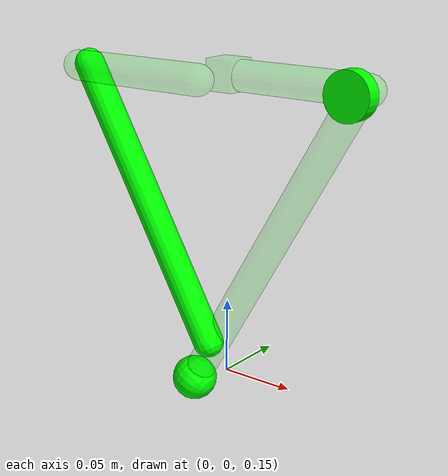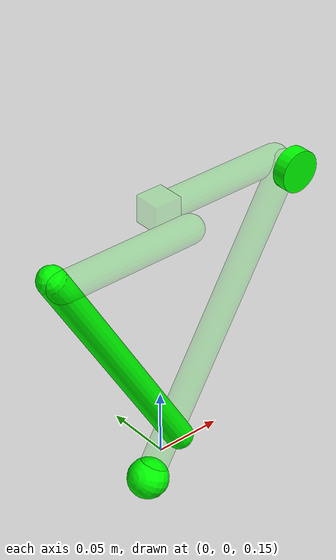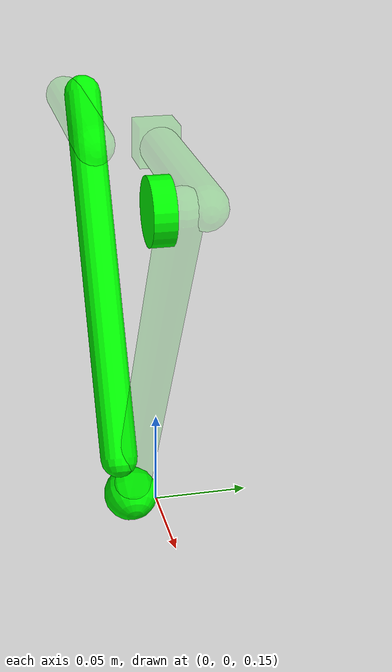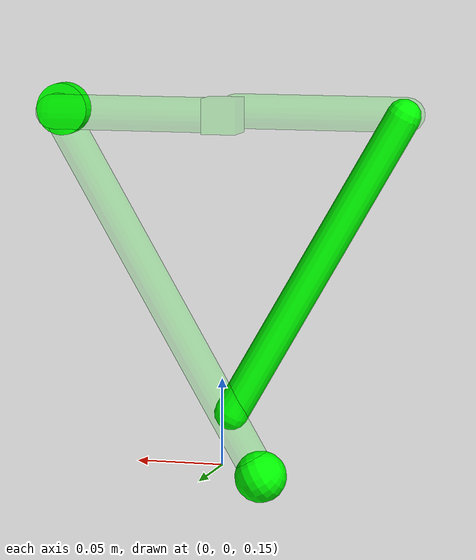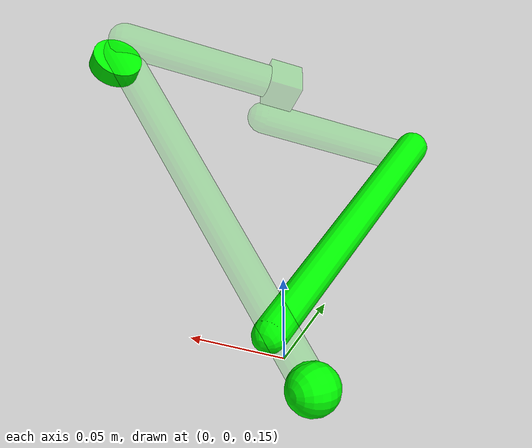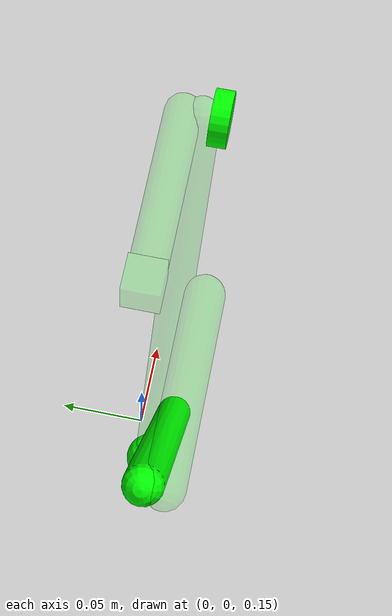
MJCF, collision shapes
<mujoco model=''>

    <compiler inertiafromgeom='false' angle='degree' eulerseq='zyx' meshdir='../../minitaur-stl'/>
    <size nuser_actuator='1' nuser_sensor='1'/>
    <option timestep='0.0005' iterations='50' solver='PGS' gravity='0 0 -9.806'/>
    <!-- Timestep is set to 0.0005 because our controller runs at 2 kHz (-9.806) -->
    <!-- Larger values still have stable dynamics -->

    <visual>
        <quality shadowsize='4096'/>
        <map znear='0.05'/>
    </visual>

    <default>
        <joint limited='true'/>
        <geom contype='0' conaffinity='0' condim='1' solref=".005 1" solimp=".8 .8 .01" material='collision'/>
        <equality solref='0.005 1'/>
        <motor ctrllimited='true'/>
        <mesh scale='0.001 0.001 0.001'/>
        <default class='mesh-import'>
            <geom type='mesh' euler='0 90 90' material='cassie'/>
        </default>
    </default>

    <asset>
        <texture type='skybox' builtin='gradient' width='128' height='128' rgb1='0.725490196078431   0.403921568627451   1.000000000000000' rgb2='1.000000000000000   0.984313725490196   0.588235294117647'/>
        <texture name='plane' type='2d' builtin='checker'  rgb1='1 0 0' rgb2='1 1 0' width='128' height='128'/>
        <material name='plane' reflectance='0.0' texture='plane' texrepeat='4 4' texuniform='true'/>
        <material name='cassie' rgba='0.003921568627451   0.803921568627451   0.996078431372549 1'/>
        <material name='collision' rgba='0 1 0 0.1'/>
        <mesh name='thigh' file='thigh.STL'/>
        <mesh name='foot' file='foot.STL'/>
        <mesh name='calf1' file='calf.STL'/>
        <mesh name='calf2' file='ankle.STL'/>
    </asset>

    <worldbody>
        <body pos='0 0 0.35'>
            <inertial pos='0 0 0' mass='0.0001' diaginertia='0.0000000001 0.0000000001 0.0000000001'/>
            <geom type='box' size='0.01 0.01 0.01'/>

            <!-- thigh 1 -->
            <body euler='0 0 0' pos='0 0 0'>
                    <inertial pos='0.03848 0 0.00397' mass='0.03921' fullinertia='0.00000539488 0.00005606744 0.00006107051 0 0.00000009813 0'/>
                    <geom type='capsule' fromto='0 0 0 0.1 0 0' size='0.01'/>
                    <geom class='mesh-import' mesh='thigh' euler='180 90 90' pos='0.1 -0.005 0'/>
                    <joint name='thigh1_j' type='hinge' pos='0 0 0' axis='0 1 0' range='-180 180' ref='-90' armature='0.0001'/>

                <body name='calf_long' pos='0.1 -0.01 0' euler='0 120 0'>
                    <inertial pos='0.11635 0 0.00463' mass='0.05488' fullinertia='0.00000220501 0.00027791876 0.00027939897 0 0 0'/>
                    <geom type='capsule' fromto='0 0 0 0.24 0 0' size='0.01'/>
                    <geom type='cylinder' pos='0 -0.01 0' euler='0 0 90' size='0.015 0.005' condim='3' contype='2' conaffinity='2'/>
                    <geom class='mesh-import' mesh='calf2' euler='180 90 90' pos='0 -0.005 0'/>
                    <joint type='hinge' pos='0 0 0' axis='0 1 0' limited='false'/>

                    <body pos='0.24 0 0'>
                        <inertial pos='0 0 0' mass='0'/>
                        <geom type='sphere' size='0.015' contype='1' conaffinity='1'/>
                        <geom class='mesh-import' mesh='foot' euler='90 0 0' pos='0.005 0 0'/>
                    </body>

                </body>

            </body>

            <!-- thigh 1 -->
            <body euler='0 180 0' pos='0 -0.03 0'>
                <inertial pos='0.03848 0 0.00397' mass='0.03921' fullinertia='0.00000539488 0.00005606744 0.00006107051 0 0.00000009813 0'/>
                <geom type='capsule' fromto='0 0 0 0.1 0 0' size='0.01'/>
                <geom class='mesh-import' mesh='thigh' euler='180 90 90' pos='0.1 -0.005 0'/>
                <joint name='thigh2_j' type='hinge' pos='0 0 0' axis='0 1 0' range='-180 180' ref='90' armature='0.0001'/>

                <body name='calf_short' euler='0 -120 0' pos='0.1 0.01 0'>
                    <inertial pos='0.10296 0 0.00448' mass='0.04710' fullinertia='0.00000203538 0.00019397672 0.00019542559 0 -0.00000006948 0'/>
                    <geom type='capsule' fromto='0 0 0 0.2 0 0' size='0.01' contype='2' conaffinity='2'/>
                    <joint type='hinge' pos='0 0 0' axis='0 1 0' limited='false'/>
                    <geom class='mesh-import' mesh='calf1' pos='0 0.005 0'/>
                </body>

            </body>
        </body>
    </worldbody>

    <equality>
        <connect body1='calf_short' body2='calf_long' anchor='0.2 0 0' solref='0.005 1'/>
    </equality>

    <actuator>
        <motor name='thigh1_a' joint='thigh1_j' gear='1' ctrllimited='true' ctrlrange='-10 10'/>
        <motor name='thigh2_a' joint='thigh2_j' gear='1' ctrllimited='true' ctrlrange='-10 10'/>
    </actuator>

    <sensor>
        <jointpos name='thigh1_spos' joint='thigh1_j'/>
        <jointpos name='thigh2_spos' joint='thigh2_j'/>
        <jointvel name='thigh1_svel' joint='thigh1_j'/>
        <jointvel name='thigh2_svel' joint='thigh2_j'/>
    </sensor>

</mujoco>
